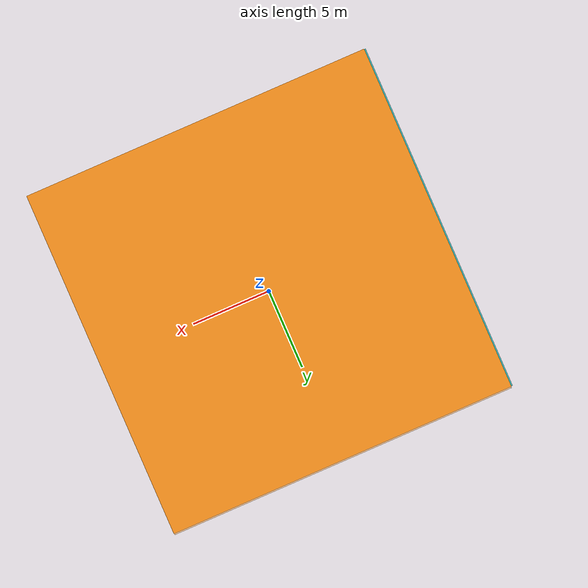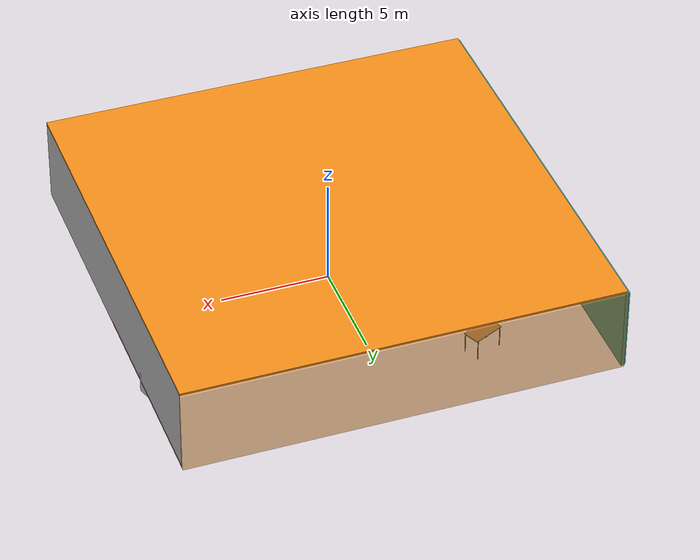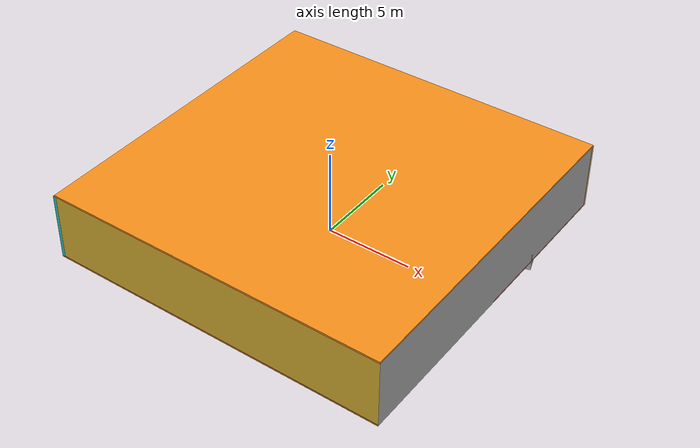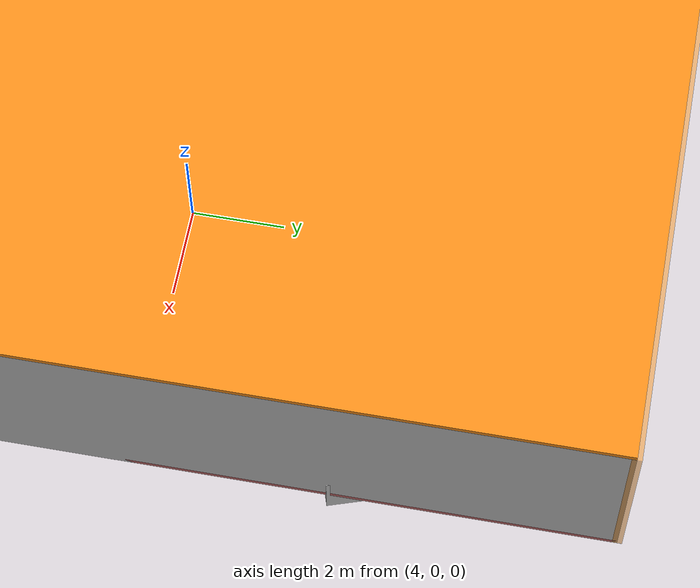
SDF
<sdf version="1.4">
 <world name="default">
  <physics type="ode">
   <max_step_size>0.001</max_step_size>
   <real_time_factor>1</real_time_factor>
   <real_time_update_rate>1000</real_time_update_rate>
   <gravity>0 0 -9.8</gravity>
  </physics>
  <scene><ambient>0.4 0.4 0.4 1</ambient><background>0.7 0.7 0.7 1</background><shadows>1</shadows></scene>
  <model name="Surrounding">
   <static>1</static>
   <link name="Ceiling">
    <collision name="Ceiling_Collision"><geometry><box><size>20 20 0.1</size></box></geometry></collision>
    <visual name="Ceiling_Visual">
     <geometry><box><size>20 20 0.1</size></box></geometry>
     <material>
      <script><uri>file://media/materials/scripts/gazebo.material</uri><name>Gazebo/Orange</name></script>
     </material>
    </visual>
    <pose>0 0 4.05 0 0 0</pose>
   </link>
   <link name="Wall_South">
    <collision name="Wall_South_Collision">
     <geometry><box><size>20 0 4</size></box></geometry>
     <pose>0 0 2 0 -0 0</pose>
    </collision>
    <visual name="Wall_South_Visual">
     <pose>0 0 2 0 -0 0</pose>
     <geometry><box><size>20 0 4</size></box></geometry>
     <material>
      <script><uri>file://media/materials/scripts/gazebo.material</uri><name>Gazebo/Gold</name></script>
     </material>
    </visual>
    <velocity_decay><linear>0</linear><angular>0</angular></velocity_decay>
    <pose>0 -10 0 0 -0 0</pose>
   </link>
   <link name="Wall_East">
    <collision name="Wall_21_Collision">
     <geometry><box><size>20 0 4</size></box></geometry>
     <pose>0 0 2 0 -0 0</pose>
    </collision>
    <visual name="Wall_21_Visual">
     <pose>0 0 2 0 -0 0</pose>
     <geometry><box><size>20 0 4</size></box></geometry>
     <material>
      <script><uri>file://media/materials/scripts/gazebo.material</uri><name>Gazebo/Pioneer2Body</name></script>
     </material>
    </visual>
    <velocity_decay><linear>0</linear><angular>0</angular></velocity_decay>
    <pose>10 0 0 0 -0 1.5708</pose>
   </link>
   <link name="Wall_North">
    <collision name="Wall_22_Collision">
     <geometry><box><size>20 0.2 4</size></box></geometry>
     <pose>0 0 2 0 -0 0</pose>
    </collision>
    <visual name="Wall_22_Visual">
     <pose>0 0 2 0 -0 0</pose>
     <geometry><box><size>20 0.2 4</size></box></geometry>
     <material>
      <script>
       <uri>file://media/materials/scripts/gazebo.material</uri>
       <name>Gazebo/OrangeTransparent</name>
      </script>
     </material>
    </visual>
    <velocity_decay><linear>0</linear><angular>0</angular></velocity_decay>
    <pose>0 10 0 0 -0 0</pose>
   </link>
   <link name="Wall_West">
    <collision name="Wall_23_Collision">
     <geometry><box><size>20 0.2 4</size></box></geometry>
     <pose>0 0 2 0 -0 0</pose>
    </collision>
    <visual name="Wall_23_Visual">
     <pose>0 0 2 0 -0 0</pose>
     <geometry><box><size>20 0.2 4</size></box></geometry>
     <material>
      <script>
       <uri>file://media/materials/scripts/gazebo.material</uri>
       <name>Gazebo/TurquoiseGlowOutline</name>
      </script>
     </material>
    </visual>
    <velocity_decay><linear>0</linear><angular>0</angular></velocity_decay>
    <pose>-10 0 0 0 0 -1.5708</pose>
   </link>
   <link name="Ground_link">
    <collision name="collision">
     <pose>0 0 .05 0 -0 0</pose>
     <geometry><box><size>20 20 0.1</size></box></geometry>
    </collision>
    <visual name="visual">
     <pose>0 0 .05 0 -0 0</pose>
     <geometry><box><size>20 20 0.1</size></box></geometry>
     <material>
      <script><uri>file://media/materials/scripts/gazebo.material</uri><name>Gazebo/RedTransparent</name></script>
     </material>
    </visual>
   </link>
   <static>1</static>
  </model>
  <spherical_coordinates>
   <surface_model>EARTH_WGS84</surface_model>
   <latitude_deg>0</latitude_deg>
   <longitude_deg>0</longitude_deg>
   <elevation>0</elevation>
   <heading_deg>0</heading_deg>
  </spherical_coordinates>
  <light name="lightball_0" type="diffuse">
   <diffuse>0.8 0.8 0.8 1</diffuse>
   <specular>0.2 0.2 0.2 1</specular>
   <attenuation>
    <range>100</range>
    <constant>0.7</constant>
    <linear>0.01</linear>
    <quadratic>0.001</quadratic>
   </attenuation>
   <direction>-0.5 0.1 -0.9</direction>
   <pose>-2.11242019315 -4.34690558787 1.8770703397 0 0 0</pose>
  </light>
  <light name="lightball_1" type="diffuse">
   <diffuse>0.8 0.8 0.8 1</diffuse>
   <specular>0.2 0.2 0.2 1</specular>
   <attenuation>
    <range>100</range>
    <constant>0.7</constant>
    <linear>0.01</linear>
    <quadratic>0.001</quadratic>
   </attenuation>
   <direction>-0.5 0.1 -0.9</direction>
   <pose>9.71196612538 2.72342919524 2.60923377625 0 0 0</pose>
  </light>
  <light name="lightball_2" type="diffuse">
   <diffuse>0.8 0.8 0.8 1</diffuse>
   <specular>0.2 0.2 0.2 1</specular>
   <attenuation>
    <range>100</range>
    <constant>0.7</constant>
    <linear>0.01</linear>
    <quadratic>0.001</quadratic>
   </attenuation>
   <direction>-0.5 0.1 -0.9</direction>
   <pose>-0.749850207646 -9.78056159533 3.12754610292 0 0 0</pose>
  </light>
  <light name="lightball_3" type="diffuse">
   <diffuse>0.8 0.8 0.8 1</diffuse>
   <specular>0.2 0.2 0.2 1</specular>
   <attenuation>
    <range>100</range>
    <constant>0.7</constant>
    <linear>0.01</linear>
    <quadratic>0.001</quadratic>
   </attenuation>
   <direction>-0.5 0.1 -0.9</direction>
   <pose>-6.51107016837 -6.91841052604 3.27233057908 0 0 0</pose>
  </light>
  <light name="lightball_4" type="diffuse">
   <diffuse>0.8 0.8 0.8 1</diffuse>
   <specular>0.2 0.2 0.2 1</specular>
   <attenuation>
    <range>100</range>
    <constant>0.7</constant>
    <linear>0.01</linear>
    <quadratic>0.001</quadratic>
   </attenuation>
   <direction>-0.5 0.1 -0.9</direction>
   <pose>-6.11340132321 7.7197845738 1.93998785434 0 0 0</pose>
  </light>
  <light name="lightball_5" type="diffuse">
   <diffuse>0.8 0.8 0.8 1</diffuse>
   <specular>0.2 0.2 0.2 1</specular>
   <attenuation>
    <range>100</range>
    <constant>0.7</constant>
    <linear>0.01</linear>
    <quadratic>0.001</quadratic>
   </attenuation>
   <direction>-0.5 0.1 -0.9</direction>
   <pose>7.95332999638 -4.97263531816 0.569348811444 0 0 0</pose>
  </light>
  <include><uri>model://table</uri><pose>-7.29392864405 -4.06858481974 0 0 0 1.53437134909</pose></include>
  <include><uri>model://table</uri><pose>-4.67103796229 6.90017097199 0 0 0 0.43020880914</pose></include>
  <include>
   <uri>model://construction_cone</uri>
   <pose>-1.64601948661 -4.62757204116 0 0 0 2.30105338648</pose>
  </include>
  <include>
   <uri>model://textured_shapes</uri>
   <pose>7.97018419125 3.91525628226 0 0 0 1.88937047767</pose>
  </include>
 </world>
</sdf>

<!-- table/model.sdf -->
<sdf version="1.5">
  <model name="table">
    <static>true</static>
    <link name="link">
      <collision name="surface">
        <pose>0 0 1.0 0 0 0</pose>
        <geometry>
          <box>
            <size>1.5 0.8 0.03</size>
          </box>
        </geometry>
        <surface>
          <friction>
            <ode>
              <mu>0.6</mu>
              <mu2>0.6</mu2>
            </ode>
          </friction>
        </surface>
      </collision>
      <visual name="visual1">
        <pose>0 0 1.0 0 0 0</pose>
        <geometry>
          <box>
            <size>1.5 0.8 0.03</size>
          </box>
        </geometry>
        <material>
          <script>
            <uri>model://media/materials/scripts/gazebo.material</uri>
            <name>Gazebo/Wood</name>
          </script>
        </material>
      </visual>
      <collision name="front_left_leg">
        <pose>0.68 0.38 0.5 0 0 0</pose>
        <geometry>
          <cylinder>
            <radius>0.02</radius>
            <length>1.0</length>
          </cylinder>
        </geometry>
      </collision>
      <visual name="front_left_leg">
        <pose>0.68 0.38 0.5 0 0 0</pose>
        <geometry>
          <cylinder>
            <radius>0.02</radius>
            <length>1.0</length>
          </cylinder>
        </geometry>
        <material>
          <script>
            <uri>model://media/materials/scripts/gazebo.material</uri>
            <name>Gazebo/Grey</name>
          </script>
        </material>
      </visual>
      <collision name="front_right_leg">
        <pose>0.68 -0.38 0.5 0 0 0</pose>
        <geometry>
          <cylinder>
            <radius>0.02</radius>
            <length>1.0</length>
          </cylinder>
        </geometry>
      </collision>
      <visual name="front_right_leg">
        <pose>0.68 -0.38 0.5 0 0 0</pose>
        <geometry>
          <cylinder>
            <radius>0.02</radius>
            <length>1.0</length>
          </cylinder>
        </geometry>
        <material>
          <script>
            <uri>model://media/materials/scripts/gazebo.material</uri>
            <name>Gazebo/Grey</name>
          </script>
        </material>
      </visual>
      <collision name="back_right_leg">
        <pose>-0.68 -0.38 0.5 0 0 0</pose>
        <geometry>
          <cylinder>
            <radius>0.02</radius>
            <length>1.0</length>
          </cylinder>
        </geometry>
      </collision>
      <visual name="back_right_leg">
        <pose>-0.68 -0.38 0.5 0 0 0</pose>
        <geometry>
          <cylinder>
            <radius>0.02</radius>
            <length>1.0</length>
          </cylinder>
        </geometry>
        <material>
          <script>
            <uri>model://media/materials/scripts/gazebo.material</uri>
            <name>Gazebo/Grey</name>
          </script>
        </material>
      </visual>
      <collision name="back_left_leg">
        <pose>-0.68 0.38 0.5 0 0 0</pose>
        <geometry>
          <cylinder>
            <radius>0.02</radius>
            <length>1.0</length>
          </cylinder>
        </geometry>
      </collision>
      <visual name="back_left_leg">
        <pose>-0.68 0.38 0.5 0 0 0</pose>
        <geometry>
          <cylinder>
            <radius>0.02</radius>
            <length>1.0</length>
          </cylinder>
        </geometry>
        <material>
          <script>
            <uri>model://media/materials/scripts/gazebo.material</uri>
            <name>Gazebo/Grey</name>
          </script>
        </material>
      </visual>
    </link>
  </model>
</sdf>

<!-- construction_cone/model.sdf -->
<sdf version="1.5">
  <model name="Construction Cone">
    <link name="link">
      <collision name="collision">
        <geometry>
          <mesh>
            <scale>10 10 10</scale>
            <uri>file://isr-testbed/construction_cone/meshes/construction_cone.dae</uri>
          </mesh>
        </geometry>
      </collision>
      <visual name="visual">
        <geometry>
          <mesh>
            <scale>10 10 10</scale>
            <uri>file://isr-testbed/construction_cone/meshes/construction_cone.dae</uri>
          </mesh>
        </geometry>
      </visual>
    </link>
  </model>
</sdf>

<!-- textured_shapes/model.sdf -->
<sdf version="1.6">
  <model name="textured_shapes">
    <pose>0 0 0.5 0 0 0</pose>
    <link name="box">
      <pose>0 -1.5 0 0 0 0</pose>
      <collision name="collision">
        <geometry>
          <box>
            <size>1 1 1</size>
          </box>
        </geometry>
      </collision>
      <visual name="visual">
        <geometry>
          <box>
            <size>1 1 1</size>
          </box>
        </geometry>
        <material>
          <script>
            <uri>model://../model_source/models/textured_shapes/materials/scripts</uri>
            <uri>model://../model_source/models/textured_shapes/materials/textures</uri>
            <name>TexturedShape/Squares</name>
          </script>
        </material>
      </visual>
    </link>
    <link name="sphere">
      <collision name="collision">
        <geometry>
          <sphere>
            <radius>0.5</radius>
          </sphere>
        </geometry>
      </collision>
      <visual name="visual">
        <geometry>
          <sphere>
            <radius>0.5</radius>
          </sphere>
        </geometry>
        <material>
          <script>
            <uri>model://../model_source/models/textured_shapes/materials/scripts</uri>
            <uri>model://../model_source/models/textured_shapes/materials/textures</uri>
            <name>TexturedShape/Squares</name>
          </script>
        </material>
      </visual>
    </link>
    <link name="cylinder">
      <pose>0 1.5 0 0 0 0</pose>
      <collision name="collision">
        <geometry>
          <cylinder>
            <radius>0.5</radius>
            <length>1</length>
          </cylinder>
        </geometry>
      </collision>
      <visual name="visual">
        <geometry>
          <cylinder>
            <radius>0.5</radius>
            <length>1</length>
          </cylinder>
        </geometry>
        <material>
          <script>
            <uri>model://../model_source/models/textured_shapes/materials/scripts</uri>
            <uri>model://../model_source/models/textured_shapes/materials/textures</uri>
            <name>TexturedShape/Squares</name>
          </script>
        </material>
      </visual>
    </link>
  </model>
</sdf>
